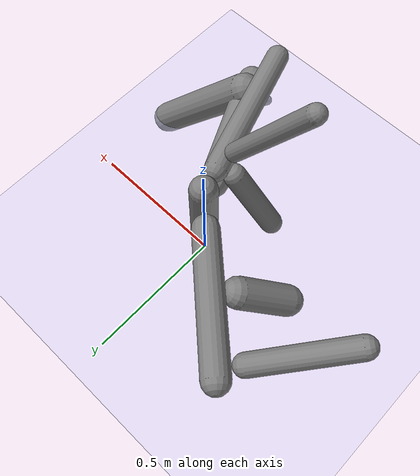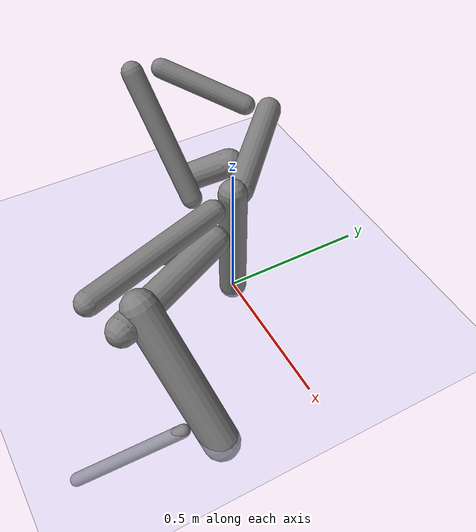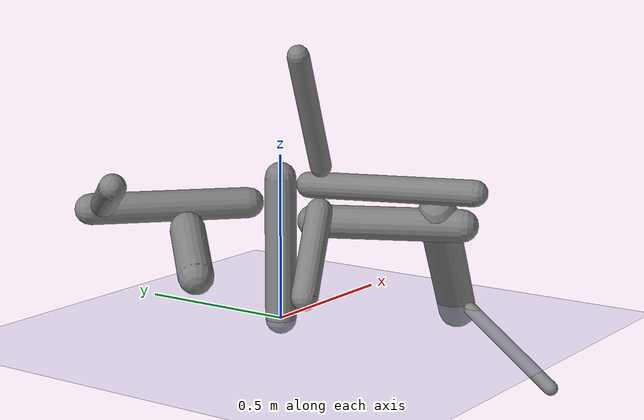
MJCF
<?xml version='1.0' encoding='UTF-8'?>
<mujoco model="robot_model">
  <worldbody>
    <light name="light" pos="0 -3 10" dir="0 0.5 -1" diffuse=".8 .8 .8" specular="0.1 0.1 0.1"/>
    <geom name="floor" type="plane" size="10.0 10.0 0.1" pos="0 0 0" rgba="0.8 0.8 1 1" contype="2" conaffinity="1"/>
    <body name="limb0" pos="0 0 0">
      <geom name="limb0_geom" type="capsule" fromto="0 0 0 0 0 0.431503401329401" size="0.04741963804187046" density="557.7879578366949" contype="1" conaffinity="2"/>
      <site type="sphere" size="0.01" name="limb0_site0" pos="0.02861040762077146 -0.08635750428163348 0.41554603450893635" quat="0.7071067811865476 0.6712283319072994 0.22237924013932678 0.0"/>
      <site type="sphere" size="0.01" name="limb0_site1" pos="-0.07192255995187072 0.06601276075644182 0.36030025007797745" quat="0.7071067811865476 -0.47813899227030277 -0.5209444347247979 0.0"/>
      <site type="sphere" size="0.01" name="limb0_site2" pos="0.04372025957333904 -0.09126302662836513 0.3036859532458523" quat="0.7071067811865476 0.6377072953656286 0.3054986177341149 0.0"/>
      <freejoint name="limb0_root"/>
      <body name="limb1" pos="0.02861040762077146 -0.08635750428163348 0.41554603450893635" quat="0.7071067811865476 0.6712283319072994 0.22237924013932678 0.0">
        <geom name="limb1_geom" type="capsule" fromto="0 0 0 0 0 0.49547813334712787" size="0.03955384144517039" density="546.354659740575" contype="1" conaffinity="2"/>
        <site type="sphere" size="0.01" name="limb1_site0" pos="-0.02143255312761528 -0.08015944910325848 0.04301487083180519" quat="0.7071067811865476 0.6831108323134327 -0.18264608064792692 0.0"/>
        <site type="sphere" size="0.01" name="limb1_site1" pos="0.08804952519727993 -0.052944067539255506 0.3733162845144081" quat="0.7071067811865476 0.3643819619215335 0.6059915724052719 0.0"/>
        <site type="sphere" size="0.01" name="limb1_site2" pos="-0.058442159243950145 0.047499814519960847 0.04649822144680938" quat="0.7071067811865476 -0.4459843175377061 -0.5487239638565337 0.0"/>
        <body name="limb2" pos="-0.02143255312761528 -0.08015944910325848 0.04301487083180519" quat="0.7071067811865476 0.6831108323134327 -0.18264608064792692 0.0">
          <geom name="limb2_geom" type="capsule" fromto="0 0 0 0 0 0.2690513585699125" size="0.03942140555118351" density="1102.023124697437" contype="1" conaffinity="2"/>
          <joint name="joint_limb1_limb2_0" type="hinge" axis="0 0 1" range="-98.9154623705146 98.9154623705146" damping="5.0"/>
        </body>
        <body name="limb3" pos="0.08804952519727993 -0.052944067539255506 0.3733162845144081" quat="0.7071067811865476 0.3643819619215335 0.6059915724052719 0.0">
          <geom name="limb3_geom" type="capsule" fromto="0 0 0 0 0 0.48959376194094206" size="0.05918754834038625" density="802.9415833604631" contype="1" conaffinity="2"/>
          <site type="sphere" size="0.01" name="limb3_site0" pos="-0.08307094342313576 -0.01701843065020727 0.4043835036046962" quat="0.7071067811865476 0.14191481181251162 -0.6927194137514981 0.0"/>
          <body name="limb4" pos="-0.08307094342313576 -0.01701843065020727 0.4043835036046962" quat="0.7071067811865476 0.14191481181251162 -0.6927194137514981 0.0">
            <geom name="limb4_geom" type="capsule" fromto="0 0 0 0 0 0.38459472964710323" size="0.02160872883618403" density="855.2206834106865" contype="1" conaffinity="2"/>
            <joint name="joint_limb3_limb4_0" type="hinge" axis="0 1 0" range="-101.32440953641924 101.32440953641924" damping="5.0"/>
          </body>
          <joint name="joint_limb1_limb3_0" type="hinge" axis="0 1 0" range="-67.6147071968753 67.6147071968753" damping="5.0"/>
        </body>
        <body name="limb5" pos="-0.058442159243950145 0.047499814519960847 0.04649822144680938" quat="0.7071067811865476 -0.4459843175377061 -0.5487239638565337 0.0">
          <geom name="limb5_geom" type="capsule" fromto="0 0 0 0 0 0.40706090799338945" size="0.0317569702389823" density="856.5478286875992" contype="1" conaffinity="2"/>
          <joint name="joint_limb1_limb5_0" type="hinge" axis="0 0 1" range="-27.37410133978059 27.37410133978059" damping="5.0"/>
        </body>
        <joint name="joint_limb0_limb1_0" type="hinge" axis="0 0 1" range="-68.12604965752686 68.12604965752686" damping="5.0"/>
      </body>
      <body name="limb6" pos="-0.07192255995187072 0.06601276075644182 0.36030025007797745" quat="0.7071067811865476 -0.47813899227030277 -0.5209444347247979 0.0">
        <geom name="limb6_geom" type="capsule" fromto="0 0 0 0 0 0.46547630508295557" size="0.04620484255965521" density="452.2163331290331" contype="1" conaffinity="2"/>
        <site type="sphere" size="0.01" name="limb6_site0" pos="-0.09863492298269616 -0.026258723105375595 0.19431220483274977" quat="0.7071067811865476 0.1819109102907572 -0.6833069740001106 0.0"/>
        <site type="sphere" size="0.01" name="limb6_site1" pos="-0.035089758645457735 -0.07977836716541273 0.4346473020080502" quat="0.7071067811865476 0.6472635124585655 -0.284692721086789 0.0"/>
        <body name="limb7" pos="-0.09863492298269616 -0.026258723105375595 0.19431220483274977" quat="0.7071067811865476 0.1819109102907572 -0.6833069740001106 0.0">
          <geom name="limb7_geom" type="capsule" fromto="0 0 0 0 0 0.19013137675026606" size="0.05186556730984218" density="689.8463603876553" contype="1" conaffinity="2"/>
          <joint name="joint_limb6_limb7_0" type="hinge" axis="1 0 0" range="-31.26136655405572 31.26136655405572" damping="5.0"/>
        </body>
        <body name="limb8" pos="-0.035089758645457735 -0.07977836716541273 0.4346473020080502" quat="0.7071067811865476 0.6472635124585655 -0.284692721086789 0.0">
          <geom name="limb8_geom" type="capsule" fromto="0 0 0 0 0 0.33452014143631376" size="0.03694949771881789" density="498.15252814085875" contype="1" conaffinity="2"/>
          <joint name="joint_limb6_limb8_0" type="hinge" axis="0 1 0" range="-102.37813583927716 102.37813583927716" damping="5.0"/>
        </body>
        <joint name="joint_limb0_limb6_0" type="hinge" axis="0 1 0" range="-52.554561610070444 52.554561610070444" damping="5.0"/>
      </body>
      <body name="limb9" pos="0.04372025957333904 -0.09126302662836513 0.3036859532458523" quat="0.7071067811865476 0.6377072953656286 0.3054986177341149 0.0">
        <geom name="limb9_geom" type="capsule" fromto="0 0 0 0 0 0.4407503648937028" size="0.049775229053895954" density="511.14534329615805" contype="1" conaffinity="2"/>
        <joint name="joint_limb0_limb9_0" type="hinge" axis="1 0 0" range="-118.18283228717938 118.18283228717938" damping="5.0"/>
      </body>
    </body>
  </worldbody>
  <actuator>
    <position name="position_actuator_joint_limb0_limb1_0" joint="joint_limb0_limb1_0" gear="1.7203010962694532" inheritrange="1" forcerange="-7.360783393222507 7.360783393222507" forcelimited="true" kp="100.0"/>
    <position name="position_actuator_joint_limb1_limb2_0" joint="joint_limb1_limb2_0" gear="1.6987945695741722" inheritrange="1" forcerange="-8.65184446884155 8.65184446884155" forcelimited="true" kp="100.0"/>
    <position name="position_actuator_joint_limb1_limb3_0" joint="joint_limb1_limb3_0" gear="1.7956793616456275" inheritrange="1" forcerange="-25.119038647695472 25.119038647695472" forcelimited="true" kp="100.0"/>
    <position name="position_actuator_joint_limb3_limb4_0" joint="joint_limb3_limb4_0" gear="1.9955154396087376" inheritrange="1" forcerange="-2.5931860354465694 2.5931860354465694" forcelimited="true" kp="100.0"/>
    <position name="position_actuator_joint_limb1_limb5_0" joint="joint_limb1_limb5_0" gear="1.2142504448254934" inheritrange="1" forcerange="-6.097981519249675 6.097981519249675" forcelimited="true" kp="100.0"/>
    <position name="position_actuator_joint_limb0_limb6_0" joint="joint_limb0_limb6_0" gear="1.9910401568149765" inheritrange="1" forcerange="-7.993186083051333 7.993186083051333" forcelimited="true" kp="100.0"/>
    <position name="position_actuator_joint_limb6_limb7_0" joint="joint_limb6_limb7_0" gear="1.1104217009589592" inheritrange="1" forcerange="-7.558031434825786 7.558031434825786" forcelimited="true" kp="100.0"/>
    <position name="position_actuator_joint_limb6_limb8_0" joint="joint_limb6_limb8_0" gear="1.8452018483956398" inheritrange="1" forcerange="-4.100044579028341 4.100044579028341" forcelimited="true" kp="100.0"/>
    <position name="position_actuator_joint_limb0_limb9_0" joint="joint_limb0_limb9_0" gear="1.76568584355309" inheritrange="1" forcerange="-10.08786538369814 10.08786538369814" forcelimited="true" kp="100.0"/>
  </actuator>
  <contact>
    <pair geom1="limb0_geom" geom2="limb1_geom"/>
    <pair geom1="limb1_geom" geom2="limb2_geom"/>
    <pair geom1="limb1_geom" geom2="limb3_geom"/>
    <pair geom1="limb3_geom" geom2="limb4_geom"/>
    <pair geom1="limb1_geom" geom2="limb5_geom"/>
    <pair geom1="limb0_geom" geom2="limb6_geom"/>
    <pair geom1="limb6_geom" geom2="limb7_geom"/>
    <pair geom1="limb6_geom" geom2="limb8_geom"/>
    <pair geom1="limb0_geom" geom2="limb9_geom"/>
  </contact>
</mujoco>
